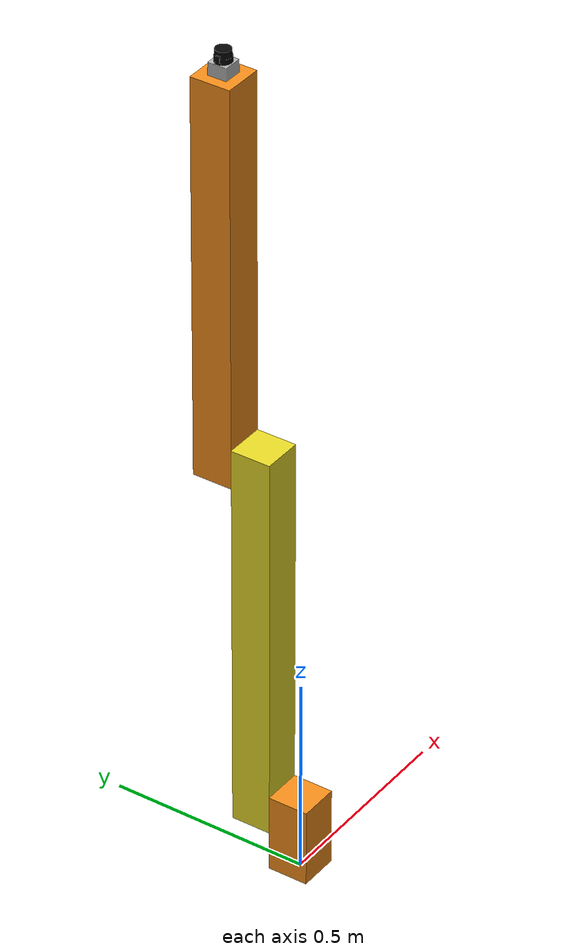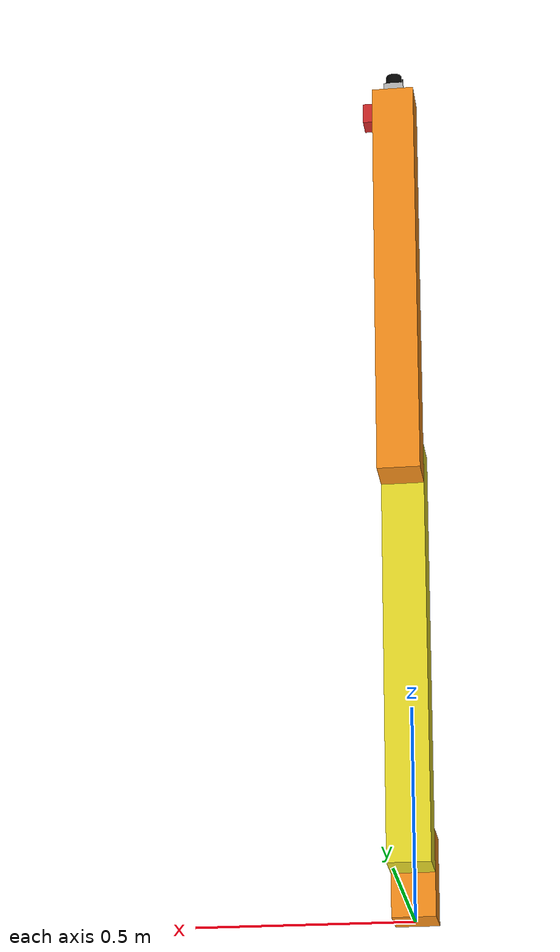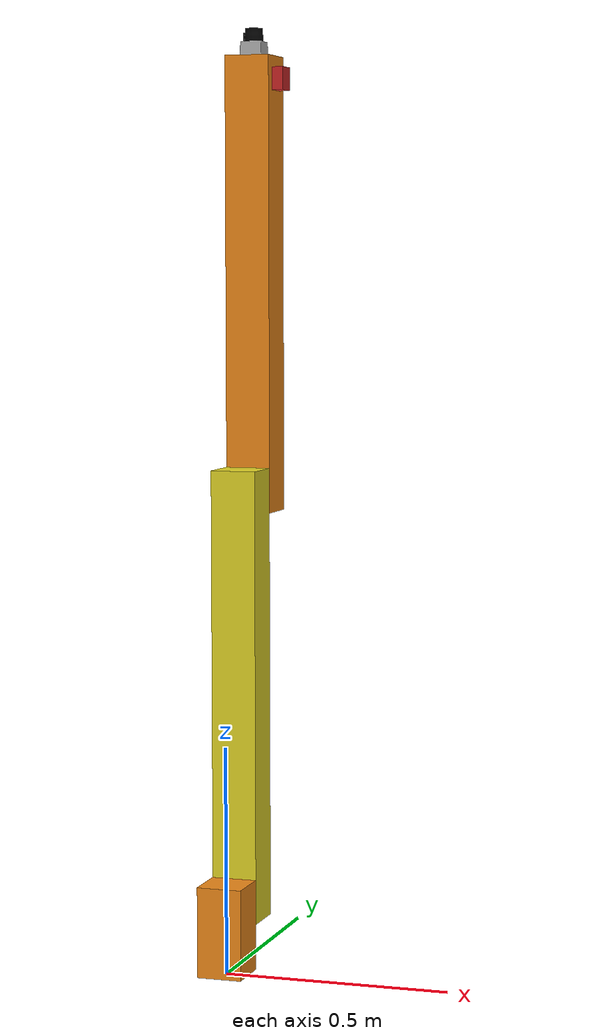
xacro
<?xml version="1.0"?>
<!-- Revolute-Revolute Manipulator -->
<!--
Copied and modified from ROS1 example:
https://github.com/ros-simulation/gazebo_ros_demos/blob/kinetic-devel/rrbot_description/urdf/rrbot.xacro
-->
<robot xmlns:xacro="http://www.ros.org/wiki/xacro" name="2dof_robot">
  <xacro:arg name="use_sim" default="false" />

  <!-- Enable setting arguments from the launch file -->
  <xacro:arg name="use_fake_hardware" default="true" />
  <xacro:arg name="fake_sensor_commands" default="false" />
  <xacro:arg name="prefix" default="" />
  <xacro:arg name="slowdown" default="2.0" />

  <!-- Import RRBot macro -->
  <xacro:include filename="$(find ros2_control_demo_description)/urdf/rrbot/rrbot.urdf.xacro" />

  <!-- Import all Gazebo-customization elements, including Gazebo colors -->
  <xacro:include filename="$(find ros2_control_demo_description)/urdf/rrbot/gazebo/rrbot.gazebo.xacro" />

  <!-- Import Rviz colors -->
  <xacro:include filename="$(find ros2_control_demo_description)/urdf/rrbot/gazebo/rrbot.materials.xacro" />

  <!-- Import RRBot ros2_control description -->
  <xacro:include filename="$(find ros2_control_demo_description)/urdf/rrbot/ros2_control/rrbot_system_multi_interface.ros2_control.xacro" />

  <!-- Used for fixing robot -->
  <link name="world"/>
  <gazebo reference="world">
    <static>true</static>
  </gazebo>

  <xacro:rrbot parent="world" prefix="$(arg prefix)">
    <origin xyz="0 0 0" rpy="0 0 0" />
  </xacro:rrbot>

  <xacro:rrbot_gazebo prefix="$(arg prefix)" />

  <xacro:rrbot_system_multi_interface
    name="RRBotSystemMultiInterface" prefix="$(arg prefix)"
    use_fake_hardware="$(arg use_fake_hardware)"
    fake_sensor_commands="$(arg fake_sensor_commands)"
    slowdown="$(arg slowdown)" />

</robot>

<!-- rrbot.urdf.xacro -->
<robot xmlns:xacro="http://www.ros.org/wiki/xacro">

  <xacro:macro name="rrbot" params="parent prefix *origin">

  <!-- Constants for robot dimensions -->
  <xacro:property name="mass" value="1" /> <!-- arbitrary value for mass -->
  <xacro:property name="width" value="0.1" /> <!-- Square dimensions (widthxwidth) of beams -->
  <xacro:property name="height1" value="0.2" /> <!-- Link 1 -->
  <xacro:property name="height2" value="1" /> <!-- Link 2 -->
  <xacro:property name="height3" value="1" /> <!-- Link 3 -->
  <xacro:property name="camera_link" value="0.05" /> <!-- Size of square 'camera' box -->
  <xacro:property name="axel_offset" value="0.05" /> <!-- Space btw top of beam and the each joint -->

  <joint name="${prefix}base_joint" type="fixed">
    <xacro:insert_block name="origin" />
    <parent link="${parent}"/>
    <child link="${prefix}base_link" />
  </joint>

  <!-- Base Link -->
  <link name="${prefix}base_link">
    <collision>
      <origin xyz="0 0 ${height1/2}" rpy="0 0 0"/>
      <geometry>
        <box size="${width} ${width} ${height1}"/>
      </geometry>
    </collision>

    <visual>
      <origin xyz="0 0 ${height1/2}" rpy="0 0 0"/>
      <geometry>
        <box size="${width} ${width} ${height1}"/>
      </geometry>
      <material name="orange"/>
    </visual>

    <inertial>
      <origin xyz="0 0 ${height1/2}" rpy="0 0 0"/>
      <mass value="${mass}"/>
      <inertia
        ixx="${mass / 12.0 * (width*width + height1*height1)}" ixy="0.0" ixz="0.0"
        iyy="${mass / 12.0 * (height1*height1 + width*width)}" iyz="0.0"
        izz="${mass / 12.0 * (width*width + width*width)}"/>
      </inertial>
    </link>

    <joint name="${prefix}joint1" type="continuous">
      <parent link="${prefix}base_link"/>
      <child link="${prefix}link1"/>
      <origin xyz="0 ${width} ${height1 - axel_offset}" rpy="0 0 0"/>
      <axis xyz="0 1 0"/>
      <dynamics damping="0.7"/>
    </joint>

    <!-- Middle Link -->
    <link name="${prefix}link1">
      <collision>
        <origin xyz="0 0 ${height2/2 - axel_offset}" rpy="0 0 0"/>
        <geometry>
          <box size="${width} ${width} ${height2}"/>
        </geometry>
      </collision>

      <visual>
        <origin xyz="0 0 ${height2/2 - axel_offset}" rpy="0 0 0"/>
        <geometry>
          <box size="${width} ${width} ${height2}"/>
        </geometry>
        <material name="yellow"/>
      </visual>

      <inertial>
        <origin xyz="0 0 ${height2/2 - axel_offset}" rpy="0 0 0"/>
        <mass value="${mass}"/>
        <inertia
          ixx="${mass / 12.0 * (width*width + height2*height2)}" ixy="0.0" ixz="0.0"
          iyy="${mass / 12.0 * (height2*height2 + width*width)}" iyz="0.0"
          izz="${mass / 12.0 * (width*width + width*width)}"/>
        </inertial>
      </link>

      <joint name="${prefix}joint2" type="continuous">
        <parent link="${prefix}link1"/>
        <child link="${prefix}link2"/>
        <origin xyz="0 ${width} ${height2 - axel_offset*2}" rpy="0 0 0"/>
        <axis xyz="0 1 0"/>
        <dynamics damping="0.7"/>
      </joint>

      <!-- Top Link -->
      <link name="${prefix}link2">
        <collision>
          <origin xyz="0 0 ${height3/2 - axel_offset}" rpy="0 0 0"/>
          <geometry>
            <box size="${width} ${width} ${height3}"/>
          </geometry>
        </collision>

        <visual>
          <origin xyz="0 0 ${height3/2 - axel_offset}" rpy="0 0 0"/>
          <geometry>
            <box size="${width} ${width} ${height3}"/>
          </geometry>
          <material name="orange"/>
        </visual>

        <inertial>
          <origin xyz="0 0 ${height3/2 - axel_offset}" rpy="0 0 0"/>
          <mass value="${mass}"/>
          <inertia
            ixx="${mass / 12.0 * (width*width + height3*height3)}" ixy="0.0" ixz="0.0"
            iyy="${mass / 12.0 * (height3*height3 + width*width)}" iyz="0.0"
            izz="${mass / 12.0 * (width*width + width*width)}"/>
          </inertial>
        </link>

        <joint name="${prefix}tool_joint" type="fixed">
          <origin xyz="0 0 1" rpy="0 0 0" />
          <parent link="${prefix}link2"/>
          <child link="${prefix}tool_link" />
        </joint>

        <!-- Tool Link -->
        <link name="${prefix}tool_link">
        </link>

        <joint name="${prefix}hokuyo_joint" type="fixed">
          <axis xyz="0 1 0" />
          <origin xyz="0 0 ${height3 - axel_offset/2}" rpy="0 0 0"/>
          <parent link="${prefix}link2"/>
          <child link="${prefix}hokuyo_link"/>
        </joint>

        <!-- Hokuyo Laser -->
        <link name="${prefix}hokuyo_link">
          <collision>
            <origin xyz="0 0 0" rpy="0 0 0"/>
            <geometry>
              <box size="0.1 0.1 0.1"/>
            </geometry>
          </collision>

          <visual>
            <origin xyz="0 0 0" rpy="0 0 0"/>
            <geometry>
              <mesh filename="package://ros2_control_demo_description/meshes/hokuyo.dae"/>
            </geometry>
          </visual>

          <inertial>
            <mass value="1e-5" />
            <origin xyz="0 0 0" rpy="0 0 0"/>
            <inertia ixx="1e-6" ixy="0" ixz="0" iyy="1e-6" iyz="0" izz="1e-6" />
          </inertial>
        </link>

        <joint name="${prefix}camera_joint" type="fixed">
          <axis xyz="0 1 0" />
          <origin xyz="${camera_link} 0 ${height3 - axel_offset*2}" rpy="0 0 0"/>
          <parent link="${prefix}link2"/>
          <child link="${prefix}camera_link"/>
        </joint>

        <!-- Camera -->
        <link name="${prefix}camera_link">
          <collision>
            <origin xyz="0 0 0" rpy="0 0 0"/>
            <geometry>
              <box size="${camera_link} ${camera_link} ${camera_link}"/>
            </geometry>
          </collision>

          <visual>
            <origin xyz="0 0 0" rpy="0 0 0"/>
            <geometry>
              <box size="${camera_link} ${camera_link} ${camera_link}"/>
            </geometry>
            <material name="red"/>
          </visual>

          <inertial>
            <mass value="1e-5" />
            <origin xyz="0 0 0" rpy="0 0 0"/>
            <inertia ixx="1e-6" ixy="0" ixz="0" iyy="1e-6" iyz="0" izz="1e-6" />
          </inertial>
        </link>

        <!-- generate an optical frame http://www.ros.org/reps/rep-0103.html#suffix-frames
        so that ros and opencv can operate on the camera frame correctly -->
        <joint name="${prefix}camera_optical_joint" type="fixed">
          <!-- these values have to be these values otherwise the gazebo camera image
          won't be aligned properly with the frame it is supposedly originating from -->
          <origin xyz="0 0 0" rpy="${-pi/2} 0 ${-pi/2}"/>
          <parent link="${prefix}camera_link"/>
          <child link="${prefix}camera_link_optical"/>
        </joint>

        <link name="${prefix}camera_link_optical">
        </link>

  </xacro:macro>

</robot>
